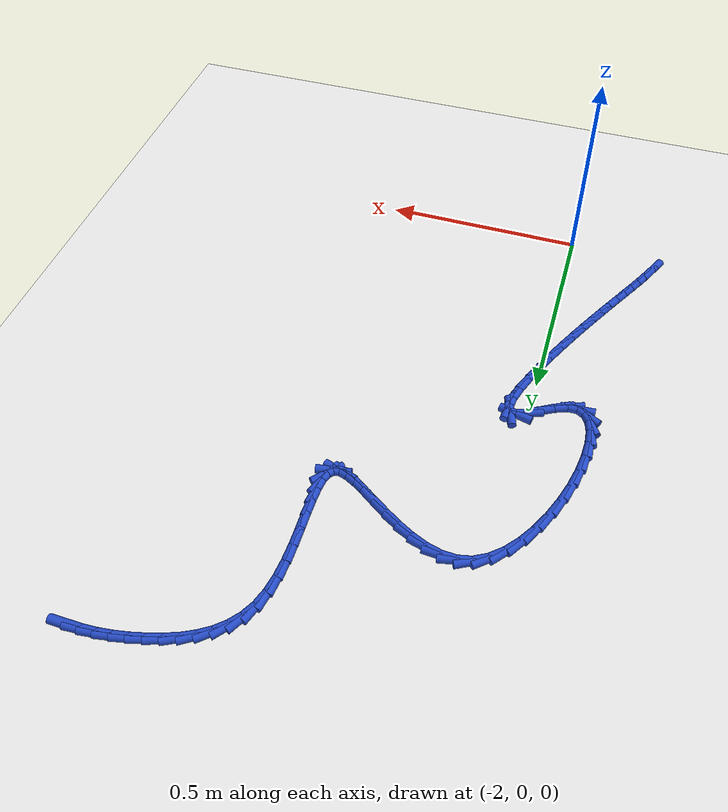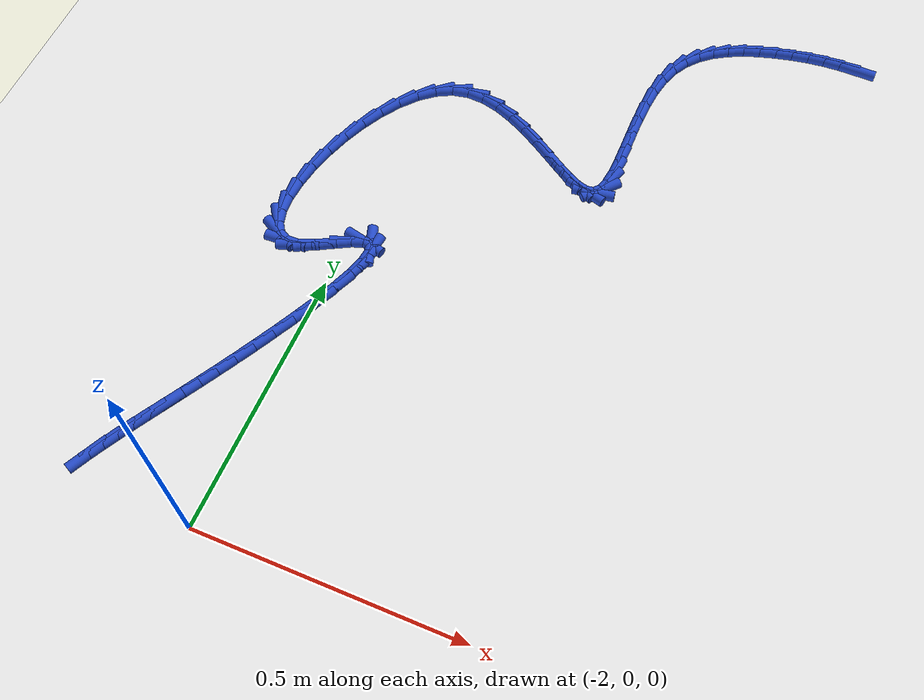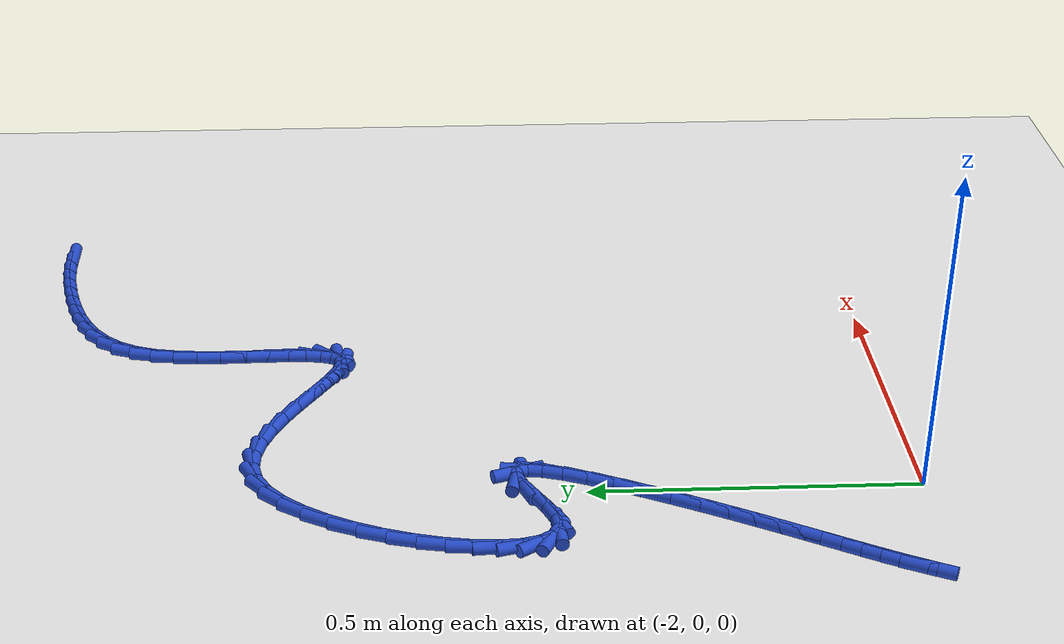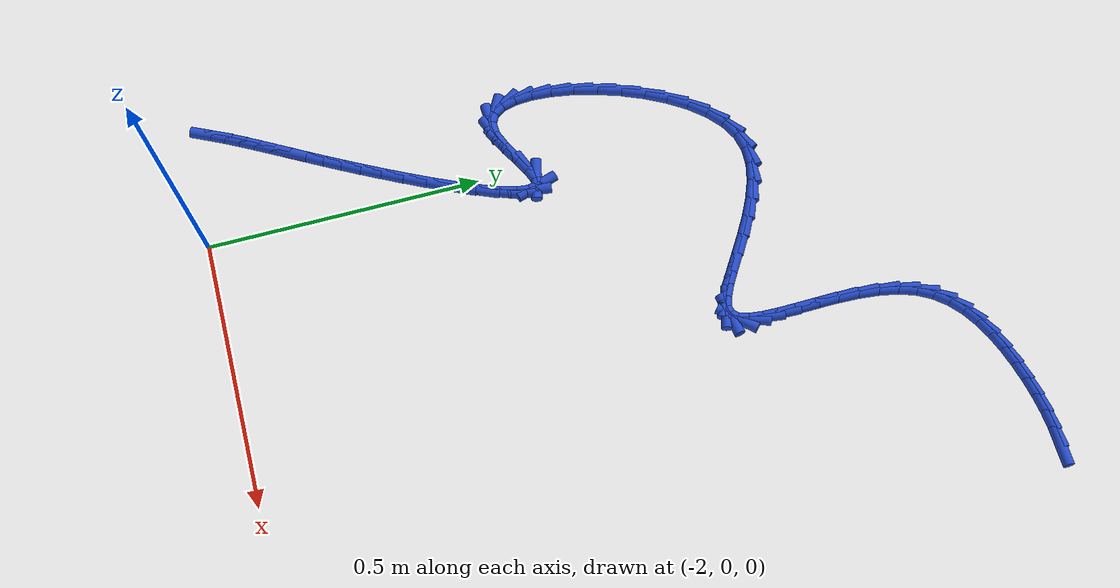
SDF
<sdf version="1.6">
 <world name="default">
  <model name="ground_plane">
   <static>1</static>
   <link name="link">
    <collision name="collision">
     <geometry><plane><normal>0 0 1</normal><size>100 100</size></plane></geometry>
     <surface><friction><ode><mu>100</mu><mu2>50</mu2></ode></friction></surface>
    </collision>
    <visual name="visual">
     <cast_shadows>0</cast_shadows>
     <geometry><plane><normal>0 0 1</normal><size>100 100</size></plane></geometry>
     <material>
      <script><uri>file://media/materials/scripts/gazebo.material</uri><name>Gazebo/WhiteGlow</name></script>
     </material>
    </visual>
   </link>
  </model>
  <model name="line">
   <link name="link_73">
    <pose>-1.2463343136387295 1.3368249456700645 0.01 0 1.57 -0.008631937998209965</pose>
    <collision name="collision">
     <geometry><cylinder><radius>0.01</radius><length>0.08</length></cylinder></geometry>
    </collision>
    <visual name="visual">
     <material>
      <script><name>Gazebo/Blue</name><uri>file://media/materials/scripts/gazebo.material</uri></script>
     </material>
     <geometry><cylinder><radius>0.01</radius><length>0.08</length></cylinder></geometry>
    </visual>
   </link>
   <link name="link_74">
    <pose>-1.2778266764549087 1.3370967925451467 0.01 0 1.57 0.06126466038014957</pose>
    <collision name="collision">
     <geometry><cylinder><radius>0.01</radius><length>0.08</length></cylinder></geometry>
    </collision>
    <visual name="visual">
     <material>
      <script><name>Gazebo/Blue</name><uri>file://media/materials/scripts/gazebo.material</uri></script>
     </material>
     <geometry><cylinder><radius>0.01</radius><length>0.08</length></cylinder></geometry>
    </visual>
   </link>
   <link name="link_75">
    <pose>-1.3095697956747943 1.3351496243767977 0.01 0 1.57 0.1242533988165497</pose>
    <collision name="collision">
     <geometry><cylinder><radius>0.01</radius><length>0.08</length></cylinder></geometry>
    </collision>
    <visual name="visual">
     <material>
      <script><name>Gazebo/Blue</name><uri>file://media/materials/scripts/gazebo.material</uri></script>
     </material>
     <geometry><cylinder><radius>0.01</radius><length>0.08</length></cylinder></geometry>
    </visual>
   </link>
   <link name="link_76">
    <pose>-1.3414238294434135 1.331171156913966 0.01 0 1.57 0.18093817223850028</pose>
    <collision name="collision">
     <geometry><cylinder><radius>0.01</radius><length>0.08</length></cylinder></geometry>
    </collision>
    <visual name="visual">
     <material>
      <script><name>Gazebo/Blue</name><uri>file://media/materials/scripts/gazebo.material</uri></script>
     </material>
     <geometry><cylinder><radius>0.01</radius><length>0.08</length></cylinder></geometry>
    </visual>
   </link>
   <link name="link_77">
    <pose>-1.3732489359057962 1.325349105905599 0.01 0 1.57 0.23198855997530543</pose>
    <collision name="collision">
     <geometry><cylinder><radius>0.01</radius><length>0.08</length></cylinder></geometry>
    </collision>
    <visual name="visual">
     <material>
      <script><name>Gazebo/Blue</name><uri>file://media/materials/scripts/gazebo.material</uri></script>
     </material>
     <geometry><cylinder><radius>0.01</radius><length>0.08</length></cylinder></geometry>
    </visual>
   </link>
   <link name="link_78">
    <pose>-1.404904838167228 1.3178706547364727 0.01 0 1.57 0.28393553386529696</pose>
    <collision name="collision">
     <geometry><cylinder><radius>0.01</radius><length>0.08</length></cylinder></geometry>
    </collision>
    <visual name="visual">
     <material>
      <script><name>Gazebo/Blue</name><uri>file://media/materials/scripts/gazebo.material</uri></script>
     </material>
     <geometry><cylinder><radius>0.01</radius><length>0.08</length></cylinder></geometry>
    </visual>
   </link>
   <link name="link_79">
    <pose>-1.436119392474305 1.3087616194852705 0.01 0 1.57 0.3524245528493814</pose>
    <collision name="collision">
     <geometry><cylinder><radius>0.01</radius><length>0.08</length></cylinder></geometry>
    </collision>
    <visual name="visual">
     <material>
      <script><name>Gazebo/Blue</name><uri>file://media/materials/scripts/gazebo.material</uri></script>
     </material>
     <geometry><cylinder><radius>0.01</radius><length>0.08</length></cylinder></geometry>
    </visual>
   </link>
   <link name="link_80">
    <pose>-1.4663038759538385 1.2976604139657608 0.01 0 1.57 0.4424551868783117</pose>
    <collision name="collision">
     <geometry><cylinder><radius>0.01</radius><length>0.08</length></cylinder></geometry>
    </collision>
    <visual name="visual">
     <material>
      <script><name>Gazebo/Blue</name><uri>file://media/materials/scripts/gazebo.material</uri></script>
     </material>
     <geometry><cylinder><radius>0.01</radius><length>0.08</length></cylinder></geometry>
    </visual>
   </link>
   <link name="link_81">
    <pose>-1.494823034834073 1.2841485114850038 0.01 0 1.57 0.5573507720597483</pose>
    <collision name="collision">
     <geometry><cylinder><radius>0.01</radius><length>0.08</length></cylinder></geometry>
    </collision>
    <visual name="visual">
     <material>
      <script><name>Gazebo/Blue</name><uri>file://media/materials/scripts/gazebo.material</uri></script>
     </material>
     <geometry><cylinder><radius>0.01</radius><length>0.08</length></cylinder></geometry>
    </visual>
   </link>
   <link name="link_82">
    <pose>-1.521041615343254 1.2678073853500609 0.01 0 1.57 0.6994492030944638</pose>
    <collision name="collision">
     <geometry><cylinder><radius>0.01</radius><length>0.08</length></cylinder></geometry>
    </collision>
    <visual name="visual">
     <material>
      <script><name>Gazebo/Blue</name><uri>file://media/materials/scripts/gazebo.material</uri></script>
     </material>
     <geometry><cylinder><radius>0.01</radius><length>0.08</length></cylinder></geometry>
    </visual>
   </link>
   <link name="link_83">
    <pose>-1.5443243637096262 1.2482185088679936 0.01 0 1.57 0.8676823654025316</pose>
    <collision name="collision">
     <geometry><cylinder><radius>0.01</radius><length>0.08</length></cylinder></geometry>
    </collision>
    <visual name="visual">
     <material>
      <script><name>Gazebo/Blue</name><uri>file://media/materials/scripts/gazebo.material</uri></script>
     </material>
     <geometry><cylinder><radius>0.01</radius><length>0.08</length></cylinder></geometry>
    </visual>
   </link>
   <link name="link_84">
    <pose>-1.5640360261614346 1.2249633553458619 0.01 0 1.57 1.0548963197041121</pose>
    <collision name="collision">
     <geometry><cylinder><radius>0.01</radius><length>0.08</length></cylinder></geometry>
    </collision>
    <visual name="visual">
     <material>
      <script><name>Gazebo/Blue</name><uri>file://media/materials/scripts/gazebo.material</uri></script>
     </material>
     <geometry><cylinder><radius>0.01</radius><length>0.08</length></cylinder></geometry>
    </visual>
   </link>
   <link name="link_85">
    <pose>-1.579541348926924 1.1976233980907283 0.01 0 1.57 1.239280055890908</pose>
    <collision name="collision">
     <geometry><cylinder><radius>0.01</radius><length>0.08</length></cylinder></geometry>
    </collision>
    <visual name="visual">
     <material>
      <script><name>Gazebo/Blue</name><uri>file://media/materials/scripts/gazebo.material</uri></script>
     </material>
     <geometry><cylinder><radius>0.01</radius><length>0.08</length></cylinder></geometry>
    </visual>
   </link>
   <link name="link_86">
    <pose>-1.5904218881682823 1.166014130874607 0.01 0 1.57 1.3776287967003065</pose>
    <collision name="collision">
     <geometry><cylinder><radius>0.01</radius><length>0.08</length></cylinder></geometry>
    </collision>
    <visual name="visual">
     <material>
      <script><name>Gazebo/Blue</name><uri>file://media/materials/scripts/gazebo.material</uri></script>
     </material>
     <geometry><cylinder><radius>0.01</radius><length>0.08</length></cylinder></geometry>
    </visual>
   </link>
   <link name="link_87">
    <pose>-1.5972639303978433 1.1310355340491673 0.01 0 1.57 1.4720005516141026</pose>
    <collision name="collision">
     <geometry><cylinder><radius>0.01</radius><length>0.08</length></cylinder></geometry>
    </collision>
    <visual name="visual">
     <material>
      <script><name>Gazebo/Blue</name><uri>file://media/materials/scripts/gazebo.material</uri></script>
     </material>
     <geometry><cylinder><radius>0.01</radius><length>0.08</length></cylinder></geometry>
    </visual>
   </link>
   <link name="link_88">
    <pose>-1.600944598009567 1.0939015106125443 0.01 0 1.57 1.5341370879950873</pose>
    <collision name="collision">
     <geometry><cylinder><radius>0.01</radius><length>0.08</length></cylinder></geometry>
    </collision>
    <visual name="visual">
     <material>
      <script><name>Gazebo/Blue</name><uri>file://media/materials/scripts/gazebo.material</uri></script>
     </material>
     <geometry><cylinder><radius>0.01</radius><length>0.08</length></cylinder></geometry>
    </visual>
   </link>
   <link name="link_89">
    <pose>-1.6023410430256986 1.0558259955430749 0.01 0 1.57 -1.5705152502460893</pose>
    <collision name="collision">
     <geometry><cylinder><radius>0.01</radius><length>0.08</length></cylinder></geometry>
    </collision>
    <visual name="visual">
     <material>
      <script><name>Gazebo/Blue</name><uri>file://media/materials/scripts/gazebo.material</uri></script>
     </material>
     <geometry><cylinder><radius>0.01</radius><length>0.08</length></cylinder></geometry>
    </visual>
   </link>
   <link name="link_90">
    <pose>-1.6023304174684843 1.0180229238190956 0.01 0 1.57 -1.5559132483573577</pose>
    <collision name="collision">
     <geometry><cylinder><radius>0.01</radius><length>0.08</length></cylinder></geometry>
    </collision>
    <visual name="visual">
     <material>
      <script><name>Gazebo/Blue</name><uri>file://media/materials/scripts/gazebo.material</uri></script>
     </material>
     <geometry><cylinder><radius>0.01</radius><length>0.08</length></cylinder></geometry>
    </visual>
   </link>
   <link name="link_91">
    <pose>-1.6017898733601696 0.9817062304189433 0.01 0 1.57 -1.5650459007870883</pose>
    <collision name="collision">
     <geometry><cylinder><radius>0.01</radius><length>0.08</length></cylinder></geometry>
    </collision>
    <visual name="visual">
     <material>
      <script><name>Gazebo/Blue</name><uri>file://media/materials/scripts/gazebo.material</uri></script>
     </material>
     <geometry><cylinder><radius>0.01</radius><length>0.08</length></cylinder></geometry>
    </visual>
   </link>
   <link name="link_92">
    <pose>-1.601596562723001 0.9480898503209554 0.01 0 1.57 1.536096427269565</pose>
    <collision name="collision">
     <geometry><cylinder><radius>0.01</radius><length>0.08</length></cylinder></geometry>
    </collision>
    <visual name="visual">
     <material>
      <script><name>Gazebo/Blue</name><uri>file://media/materials/scripts/gazebo.material</uri></script>
     </material>
     <geometry><cylinder><radius>0.01</radius><length>0.08</length></cylinder></geometry>
    </visual>
   </link>
   <link name="link_93">
    <pose>-1.6026276375792239 0.9183877185034672 0.01 0 1.57 1.4440032228487178</pose>
    <collision name="collision">
     <geometry><cylinder><radius>0.01</radius><length>0.08</length></cylinder></geometry>
    </collision>
    <visual name="visual">
     <material>
      <script><name>Gazebo/Blue</name><uri>file://media/materials/scripts/gazebo.material</uri></script>
     </material>
     <geometry><cylinder><radius>0.01</radius><length>0.08</length></cylinder></geometry>
    </visual>
   </link>
   <link name="link_94">
    <pose>-1.6057602499510846 0.8938137699448162 0.01 0 1.57 1.2473670896878621</pose>
    <collision name="collision">
     <geometry><cylinder><radius>0.01</radius><length>0.08</length></cylinder></geometry>
    </collision>
    <visual name="visual">
     <material>
      <script><name>Gazebo/Blue</name><uri>file://media/materials/scripts/gazebo.material</uri></script>
     </material>
     <geometry><cylinder><radius>0.01</radius><length>0.08</length></cylinder></geometry>
    </visual>
   </link>
   <link name="link_95">
    <pose>-1.6118715518608284 0.875581939623339 0.01 0 1.57 0.8197128560976703</pose>
    <collision name="collision">
     <geometry><cylinder><radius>0.01</radius><length>0.08</length></cylinder></geometry>
    </collision>
    <visual name="visual">
     <material>
      <script><name>Gazebo/Blue</name><uri>file://media/materials/scripts/gazebo.material</uri></script>
     </material>
     <geometry><cylinder><radius>0.01</radius><length>0.08</length></cylinder></geometry>
    </visual>
   </link>
   <link name="link_96">
    <pose>-1.621838695330702 0.8649061625173724 0.01 0 1.57 0.15324745145696742</pose>
    <collision name="collision">
     <geometry><cylinder><radius>0.01</radius><length>0.08</length></cylinder></geometry>
    </collision>
    <visual name="visual">
     <material>
      <script><name>Gazebo/Blue</name><uri>file://media/materials/scripts/gazebo.material</uri></script>
     </material>
     <geometry><cylinder><radius>0.01</radius><length>0.08</length></cylinder></geometry>
    </visual>
   </link>
   <link name="link_97">
    <pose>-1.6363663790182617 0.8626622384305411 0.01 0 1.57 -0.2705943471915253</pose>
    <collision name="collision">
     <geometry><cylinder><radius>0.01</radius><length>0.08</length></cylinder></geometry>
    </collision>
    <visual name="visual">
     <material>
      <script><name>Gazebo/Blue</name><uri>file://media/materials/scripts/gazebo.material</uri></script>
     </material>
     <geometry><cylinder><radius>0.01</radius><length>0.08</length></cylinder></geometry>
    </visual>
   </link>
   <link name="link_98">
    <pose>-1.6552247231686938 0.8678935075022591 0.01 0 1.57 -0.4569103766928133</pose>
    <collision name="collision">
     <geometry><cylinder><radius>0.01</radius><length>0.08</length></cylinder></geometry>
    </collision>
    <visual name="visual">
     <material>
      <script><name>Gazebo/Blue</name><uri>file://media/materials/scripts/gazebo.material</uri></script>
     </material>
     <geometry><cylinder><radius>0.01</radius><length>0.08</length></cylinder></geometry>
    </visual>
   </link>
   <link name="link_99">
    <pose>-1.6778687324640893 0.8790254520749997 0.01 0 1.57 -0.5383422594177437</pose>
    <collision name="collision">
     <geometry><cylinder><radius>0.01</radius><length>0.08</length></cylinder></geometry>
    </collision>
    <visual name="visual">
     <material>
      <script><name>Gazebo/Blue</name><uri>file://media/materials/scripts/gazebo.material</uri></script>
     </material>
     <geometry><cylinder><radius>0.01</radius><length>0.08</length></cylinder></geometry>
    </visual>
   </link>
   <link name="link_100">
    <pose>-1.7037531699599882 0.8944830807258415 0.01 0 1.57 -0.5672591291941141</pose>
    <collision name="collision">
     <geometry><cylinder><radius>0.01</radius><length>0.08</length></cylinder></geometry>
    </collision>
    <visual name="visual">
     <material>
      <script><name>Gazebo/Blue</name><uri>file://media/materials/scripts/gazebo.material</uri></script>
     </material>
     <geometry><cylinder><radius>0.01</radius><length>0.08</length></cylinder></geometry>
    </visual>
   </link>
   <link name="link_101">
    <pose>-1.7323327987119284 0.9126914020318617 0.01 0 1.57 -0.5627546140451036</pose>
    <collision name="collision">
     <geometry><cylinder><radius>0.01</radius><length>0.08</length></cylinder></geometry>
    </collision>
    <visual name="visual">
     <material>
      <script><name>Gazebo/Blue</name><uri>file://media/materials/scripts/gazebo.material</uri></script>
     </material>
     <geometry><cylinder><radius>0.01</radius><length>0.08</length></cylinder></geometry>
    </visual>
   </link>
   <link name="link_102">
    <pose>-1.7630623817754492 0.9320754245701387 0.01 0 1.57 -0.5309092877195615</pose>
    <collision name="collision">
     <geometry><cylinder><radius>0.01</radius><length>0.08</length></cylinder></geometry>
    </collision>
    <visual name="visual">
     <material>
      <script><name>Gazebo/Blue</name><uri>file://media/materials/scripts/gazebo.material</uri></script>
     </material>
     <geometry><cylinder><radius>0.01</radius><length>0.08</length></cylinder></geometry>
    </visual>
   </link>
   <link name="link_103">
    <pose>-1.7953966822060894 0.9510601569177506 0.01 0 1.57 -0.4711311863479076</pose>
    <collision name="collision">
     <geometry><cylinder><radius>0.01</radius><length>0.08</length></cylinder></geometry>
    </collision>
    <visual name="visual">
     <material>
      <script><name>Gazebo/Blue</name><uri>file://media/materials/scripts/gazebo.material</uri></script>
     </material>
     <geometry><cylinder><radius>0.01</radius><length>0.08</length></cylinder></geometry>
    </visual>
   </link>
   <link name="link_104">
    <pose>-1.8287904630593879 0.9680706076517746 0.01 0 1.57 -0.37790965209695593</pose>
    <collision name="collision">
     <geometry><cylinder><radius>0.01</radius><length>0.08</length></cylinder></geometry>
    </collision>
    <visual name="visual">
     <material>
      <script><name>Gazebo/Blue</name><uri>file://media/materials/scripts/gazebo.material</uri></script>
     </material>
     <geometry><cylinder><radius>0.01</radius><length>0.08</length></cylinder></geometry>
    </visual>
   </link>
   <link name="link_105">
    <pose>-1.8626984873908827 0.9815317853492888 0.01 0 1.57 -0.2412984838510857</pose>
    <collision name="collision">
     <geometry><cylinder><radius>0.01</radius><length>0.08</length></cylinder></geometry>
    </collision>
    <visual name="visual">
     <material>
      <script><name>Gazebo/Blue</name><uri>file://media/materials/scripts/gazebo.material</uri></script>
     </material>
     <geometry><cylinder><radius>0.01</radius><length>0.08</length></cylinder></geometry>
    </visual>
   </link>
   <link name="link_106">
    <pose>-1.896575518256114 0.9898686985873714 0.01 0 1.57 -0.04913813029897004</pose>
    <collision name="collision">
     <geometry><cylinder><radius>0.01</radius><length>0.08</length></cylinder></geometry>
    </collision>
    <visual name="visual">
     <material>
      <script><name>Gazebo/Blue</name><uri>file://media/materials/scripts/gazebo.material</uri></script>
     </material>
     <geometry><cylinder><radius>0.01</radius><length>0.08</length></cylinder></geometry>
    </visual>
   </link>
   <link name="link_107">
    <pose>-1.9298763187106198 0.9915063559431 0.01 0 1.57 0.2033554925159476</pose>
    <collision name="collision">
     <geometry><cylinder><radius>0.01</radius><length>0.08</length></cylinder></geometry>
    </collision>
    <visual name="visual">
     <material>
      <script><name>Gazebo/Blue</name><uri>file://media/materials/scripts/gazebo.material</uri></script>
     </material>
     <geometry><cylinder><radius>0.01</radius><length>0.08</length></cylinder></geometry>
    </visual>
   </link>
   <link name="link_108">
    <pose>-1.9620557343318434 0.984870773779445 0.01 0 1.57 0.47632104002496634</pose>
    <collision name="collision">
     <geometry><cylinder><radius>0.01</radius><length>0.08</length></cylinder></geometry>
    </collision>
    <visual name="visual">
     <material>
      <script><name>Gazebo/Blue</name><uri>file://media/materials/scripts/gazebo.material</uri></script>
     </material>
     <geometry><cylinder><radius>0.01</radius><length>0.08</length></cylinder></geometry>
    </visual>
   </link>
   <link name="link_109">
    <pose>-1.9926267394762485 0.9690978571006593 0.01 0 1.57 0.6938680716081848</pose>
    <collision name="collision">
     <geometry><cylinder><radius>0.01</radius><length>0.08</length></cylinder></geometry>
    </collision>
    <visual name="visual">
     <material>
      <script><name>Gazebo/Blue</name><uri>file://media/materials/scripts/gazebo.material</uri></script>
     </material>
     <geometry><cylinder><radius>0.01</radius><length>0.08</length></cylinder></geometry>
    </visual>
   </link>
   <link name="link_110">
    <pose>-2.0212622770623305 0.9452771020077632 0.01 0 1.57 0.8564467758626754</pose>
    <collision name="collision">
     <geometry><cylinder><radius>0.01</radius><length>0.08</length></cylinder></geometry>
    </collision>
    <visual name="visual">
     <material>
      <script><name>Gazebo/Blue</name><uri>file://media/materials/scripts/gazebo.material</uri></script>
     </material>
     <geometry><cylinder><radius>0.01</radius><length>0.08</length></cylinder></geometry>
    </visual>
   </link>
   <link name="link_111">
    <pose>-2.0476625696667794 0.9148311531697765 0.01 0 1.57 0.9808618506057496</pose>
    <collision name="collision">
     <geometry><cylinder><radius>0.01</radius><length>0.08</length></cylinder></geometry>
    </collision>
    <visual name="visual">
     <material>
      <script><name>Gazebo/Blue</name><uri>file://media/materials/scripts/gazebo.material</uri></script>
     </material>
     <geometry><cylinder><radius>0.01</radius><length>0.08</length></cylinder></geometry>
    </visual>
   </link>
   <link name="link_112">
    <pose>-2.071527839866285 0.87918265525572 0.01 0 1.57 1.080799724266123</pose>
    <collision name="collision">
     <geometry><cylinder><radius>0.01</radius><length>0.08</length></cylinder></geometry>
    </collision>
    <visual name="visual">
     <material>
      <script><name>Gazebo/Blue</name><uri>file://media/materials/scripts/gazebo.material</uri></script>
     </material>
     <geometry><cylinder><radius>0.01</radius><length>0.08</length></cylinder></geometry>
    </visual>
   </link>
   <link name="link_113">
    <pose>-2.0925583102375374 0.8397542529346141 0.01 0 1.57 1.1661521935416392</pose>
    <collision name="collision">
     <geometry><cylinder><radius>0.01</radius><length>0.08</length></cylinder></geometry>
    </collision>
    <visual name="visual">
     <material>
      <script><name>Gazebo/Blue</name><uri>file://media/materials/scripts/gazebo.material</uri></script>
     </material>
     <geometry><cylinder><radius>0.01</radius><length>0.08</length></cylinder></geometry>
    </visual>
   </link>
   <link name="link_114">
    <pose>-2.1104542033572256 0.7979685908754789 0.01 0 1.57 1.2443877835960404</pose>
    <collision name="collision">
     <geometry><cylinder><radius>0.01</radius><length>0.08</length></cylinder></geometry>
    </collision>
    <visual name="visual">
     <material>
      <script><name>Gazebo/Blue</name><uri>file://media/materials/scripts/gazebo.material</uri></script>
     </material>
     <geometry><cylinder><radius>0.01</radius><length>0.08</length></cylinder></geometry>
    </visual>
   </link>
   <link name="link_115">
    <pose>-2.1249157418020403 0.7552483137473356 0.01 0 1.57 1.322047273846634</pose>
    <collision name="collision">
     <geometry><cylinder><radius>0.01</radius><length>0.08</length></cylinder></geometry>
    </collision>
    <visual name="visual">
     <material>
      <script><name>Gazebo/Blue</name><uri>file://media/materials/scripts/gazebo.material</uri></script>
     </material>
     <geometry><cylinder><radius>0.01</radius><length>0.08</length></cylinder></geometry>
    </visual>
   </link>
   <link name="link_116">
    <pose>-2.1356431481486715 0.7130160662192043 0.01 0 1.57 1.4062935764547546</pose>
    <collision name="collision">
     <geometry><cylinder><radius>0.01</radius><length>0.08</length></cylinder></geometry>
    </collision>
    <visual name="visual">
     <material>
      <script><name>Gazebo/Blue</name><uri>file://media/materials/scripts/gazebo.material</uri></script>
     </material>
     <geometry><cylinder><radius>0.01</radius><length>0.08</length></cylinder></geometry>
    </visual>
   </link>
   <link name="link_117">
    <pose>-2.142336644973808 0.672694492960106 0.01 0 1.57 1.507083777794201</pose>
    <collision name="collision">
     <geometry><cylinder><radius>0.01</radius><length>0.08</length></cylinder></geometry>
    </collision>
    <visual name="visual">
     <material>
      <script><name>Gazebo/Blue</name><uri>file://media/materials/scripts/gazebo.material</uri></script>
     </material>
     <geometry><cylinder><radius>0.01</radius><length>0.08</length></cylinder></geometry>
    </visual>
   </link>
   <link name="link_118">
    <pose>-2.1446964548541407 0.6357062386390596 0.01 0 1.57 -1.5003733273414732</pose>
    <collision name="collision">
     <geometry><cylinder><radius>0.01</radius><length>0.08</length></cylinder></geometry>
    </collision>
    <visual name="visual">
     <material>
      <script><name>Gazebo/Blue</name><uri>file://media/materials/scripts/gazebo.material</uri></script>
     </material>
     <geometry><cylinder><radius>0.01</radius><length>0.08</length></cylinder></geometry>
    </visual>
   </link>
   <link name="link_119">
    <pose>-2.142422800366358 0.6034739479250867 0.01 0 1.57 -1.3009272549280144</pose>
    <collision name="collision">
     <geometry><cylinder><radius>0.01</radius><length>0.08</length></cylinder></geometry>
    </collision>
    <visual name="visual">
     <material>
      <script><name>Gazebo/Blue</name><uri>file://media/materials/scripts/gazebo.material</uri></script>
     </material>
     <geometry><cylinder><radius>0.01</radius><length>0.08</length></cylinder></geometry>
    </visual>
   </link>
   <link name="link_120">
    <pose>-2.135215904087151 0.5774202654872073 0.01 0 1.57 -0.9776230017468416</pose>
    <collision name="collision">
     <geometry><cylinder><radius>0.01</radius><length>0.08</length></cylinder></geometry>
    </collision>
    <visual name="visual">
     <material>
      <script><name>Gazebo/Blue</name><uri>file://media/materials/scripts/gazebo.material</uri></script>
     </material>
     <geometry><cylinder><radius>0.01</radius><length>0.08</length></cylinder></geometry>
    </visual>
   </link>
   <link name="link_121">
    <pose>-2.1227759885932094 0.5589678359944422 0.01 0 1.57 -0.48313543298579753</pose>
    <collision name="collision">
     <geometry><cylinder><radius>0.01</radius><length>0.08</length></cylinder></geometry>
    </collision>
    <visual name="visual">
     <material>
      <script><name>Gazebo/Blue</name><uri>file://media/materials/scripts/gazebo.material</uri></script>
     </material>
     <geometry><cylinder><radius>0.01</radius><length>0.08</length></cylinder></geometry>
    </visual>
   </link>
   <link name="link_122">
    <pose>-2.1048032764612223 0.5495393041158116 0.01 0 1.57 0.04264386298469424</pose>
    <collision name="collision">
     <geometry><cylinder><radius>0.01</radius><length>0.08</length></cylinder></geometry>
    </collision>
    <visual name="visual">
     <material>
      <script><name>Gazebo/Blue</name><uri>file://media/materials/scripts/gazebo.material</uri></script>
     </material>
     <geometry><cylinder><radius>0.01</radius><length>0.08</length></cylinder></geometry>
    </visual>
   </link>
   <link name="link_123">
    <pose>-2.080999301784064 0.5505550133138277 0.01 0 1.57 0.36774501249843305</pose>
    <collision name="collision">
     <geometry><cylinder><radius>0.01</radius><length>0.08</length></cylinder></geometry>
    </collision>
    <visual name="visual">
     <material>
      <script><name>Gazebo/Blue</name><uri>file://media/materials/scripts/gazebo.material</uri></script>
     </material>
     <geometry><cylinder><radius>0.01</radius><length>0.08</length></cylinder></geometry>
    </visual>
   </link>
   <link name="link_124">
    <pose>-2.0520497923753016 0.5617084255815697 0.01 0 1.57 0.48563595849198266</pose>
    <collision name="collision">
     <geometry><cylinder><radius>0.01</radius><length>0.08</length></cylinder></geometry>
    </collision>
    <visual name="visual">
     <material>
      <script><name>Gazebo/Blue</name><uri>file://media/materials/scripts/gazebo.material</uri></script>
     </material>
     <geometry><cylinder><radius>0.01</radius><length>0.08</length></cylinder></geometry>
    </visual>
   </link>
   <link name="link_125">
    <pose>-2.021372164966424 0.5778999394395068 0.01 0 1.57 0.4925598282507863</pose>
    <collision name="collision">
     <geometry><cylinder><radius>0.01</radius><length>0.08</length></cylinder></geometry>
    </collision>
    <visual name="visual">
     <material>
      <script><name>Gazebo/Blue</name><uri>file://media/materials/scripts/gazebo.material</uri></script>
     </material>
     <geometry><cylinder><radius>0.01</radius><length>0.08</length></cylinder></geometry>
    </visual>
   </link>
   <link name="link_126">
    <pose>-1.9928539237493808 0.5932051307056188 0.01 0 1.57 0.36140887372729025</pose>
    <collision name="collision">
     <geometry><cylinder><radius>0.01</radius><length>0.08</length></cylinder></geometry>
    </collision>
    <visual name="visual">
     <material>
      <script><name>Gazebo/Blue</name><uri>file://media/materials/scripts/gazebo.material</uri></script>
     </material>
     <geometry><cylinder><radius>0.01</radius><length>0.08</length></cylinder></geometry>
    </visual>
   </link>
   <link name="link_127">
    <pose>-1.970382572916117 0.6016995751978852 0.01 0 1.57 -0.22307076742076928</pose>
    <collision name="collision">
     <geometry><cylinder><radius>0.01</radius><length>0.08</length></cylinder></geometry>
    </collision>
    <visual name="visual">
     <material>
      <script><name>Gazebo/Blue</name><uri>file://media/materials/scripts/gazebo.material</uri></script>
     </material>
     <geometry><cylinder><radius>0.01</radius><length>0.08</length></cylinder></geometry>
    </visual>
   </link>
   <link name="link_128">
    <pose>-1.957038569011086 0.5986725416829497 0.01 0 1.57 -1.2552259364582883</pose>
    <collision name="collision">
     <geometry><cylinder><radius>0.01</radius><length>0.08</length></cylinder></geometry>
    </collision>
    <visual name="visual">
     <material>
      <script><name>Gazebo/Blue</name><uri>file://media/materials/scripts/gazebo.material</uri></script>
     </material>
     <geometry><cylinder><radius>0.01</radius><length>0.08</length></cylinder></geometry>
    </visual>
   </link>
   <link name="link_129">
    <pose>-1.9524472217146582 0.5846093829486839 0.01 0 1.57 1.4481714277368718</pose>
    <collision name="collision">
     <geometry><cylinder><radius>0.01</radius><length>0.08</length></cylinder></geometry>
    </collision>
    <visual name="visual">
     <material>
      <script><name>Gazebo/Blue</name><uri>file://media/materials/scripts/gazebo.material</uri></script>
     </material>
     <geometry><cylinder><radius>0.01</radius><length>0.08</length></cylinder></geometry>
    </visual>
   </link>
   <link name="link_130">
    <pose>-1.9553093819677902 0.5613857154890055 0.01 0 1.57 1.2834358762890343</pose>
    <collision name="collision">
     <geometry><cylinder><radius>0.01</radius><length>0.08</length></cylinder></geometry>
    </collision>
    <visual name="visual">
     <material>
      <script><name>Gazebo/Blue</name><uri>file://media/materials/scripts/gazebo.material</uri></script>
     </material>
     <geometry><cylinder><radius>0.01</radius><length>0.08</length></cylinder></geometry>
    </visual>
   </link>
   <link name="link_131">
    <pose>-1.9643258906786227 0.5308771708858535 0.01 0 1.57 1.2022368172661273</pose>
    <collision name="collision">
     <geometry><cylinder><radius>0.01</radius><length>0.08</length></cylinder></geometry>
    </collision>
    <visual name="visual">
     <material>
      <script><name>Gazebo/Blue</name><uri>file://media/materials/scripts/gazebo.material</uri></script>
     </material>
     <geometry><cylinder><radius>0.01</radius><length>0.08</length></cylinder></geometry>
    </visual>
   </link>
   <link name="link_132">
    <pose>-1.9781975887552996 0.4949593807211677 0.01 0 1.57 1.1548227489518483</pose>
    <collision name="collision">
     <geometry><cylinder><radius>0.01</radius><length>0.08</length></cylinder></geometry>
    </collision>
    <visual name="visual">
     <material>
      <script><name>Gazebo/Blue</name><uri>file://media/materials/scripts/gazebo.material</uri></script>
     </material>
     <geometry><cylinder><radius>0.01</radius><length>0.08</length></cylinder></geometry>
    </visual>
   </link>
   <link name="link_133">
    <pose>-1.9956253171059621 0.4555079765768878 0.01 0 1.57 1.124223896999186</pose>
    <collision name="collision">
     <geometry><cylinder><radius>0.01</radius><length>0.08</length></cylinder></geometry>
    </collision>
    <visual name="visual">
     <material>
      <script><name>Gazebo/Blue</name><uri>file://media/materials/scripts/gazebo.material</uri></script>
     </material>
     <geometry><cylinder><radius>0.01</radius><length>0.08</length></cylinder></geometry>
    </visual>
   </link>
   <link name="link_134">
    <pose>-2.0153099166387536 0.414398590034952 0.01 0 1.57 1.1033129262845944</pose>
    <collision name="collision">
     <geometry><cylinder><radius>0.01</radius><length>0.08</length></cylinder></geometry>
    </collision>
    <visual name="visual">
     <material>
      <script><name>Gazebo/Blue</name><uri>file://media/materials/scripts/gazebo.material</uri></script>
     </material>
     <geometry><cylinder><radius>0.01</radius><length>0.08</length></cylinder></geometry>
    </visual>
   </link>
   <link name="link_135">
    <pose>-2.0359522282618165 0.3735068526773003 0.01 0 1.57 1.0885006600449785</pose>
    <collision name="collision">
     <geometry><cylinder><radius>0.01</radius><length>0.08</length></cylinder></geometry>
    </collision>
    <visual name="visual">
     <material>
      <script><name>Gazebo/Blue</name><uri>file://media/materials/scripts/gazebo.material</uri></script>
     </material>
     <geometry><cylinder><radius>0.01</radius><length>0.08</length></cylinder></geometry>
    </visual>
   </link>
   <link name="link_136">
    <pose>-2.0563307134992614 0.33458186458583405 0.01 0 1.57 1.076261615919782</pose>
    <collision name="collision">
     <geometry><cylinder><radius>0.01</radius><length>0.08</length></cylinder></geometry>
    </collision>
    <visual name="visual">
     <material>
      <script><name>Gazebo/Blue</name><uri>file://media/materials/scripts/gazebo.material</uri></script>
     </material>
     <geometry><cylinder><radius>0.01</radius><length>0.08</length></cylinder></geometry>
    </visual>
   </link>
   <link name="link_137">
    <pose>-2.075989208972142 0.2981250668552217 0.01 0 1.57 1.0654989032563897</pose>
    <collision name="collision">
     <geometry><cylinder><radius>0.01</radius><length>0.08</length></cylinder></geometry>
    </collision>
    <visual name="visual">
     <material>
      <script><name>Gazebo/Blue</name><uri>file://media/materials/scripts/gazebo.material</uri></script>
     </material>
     <geometry><cylinder><radius>0.01</radius><length>0.08</length></cylinder></geometry>
    </visual>
   </link>
   <link name="link_138">
    <pose>-2.0949072366091754 0.2639276779822399 0.01 0 1.57 1.0566380360842194</pose>
    <collision name="collision">
     <geometry><cylinder><radius>0.01</radius><length>0.08</length></cylinder></geometry>
    </collision>
    <visual name="visual">
     <material>
      <script><name>Gazebo/Blue</name><uri>file://media/materials/scripts/gazebo.material</uri></script>
     </material>
     <geometry><cylinder><radius>0.01</radius><length>0.08</length></cylinder></geometry>
    </visual>
   </link>
   <link name="link_139">
    <pose>-2.113069365019901 0.23177268973051068 0.01 0 1.57 1.0501700967167167</pose>
    <collision name="collision">
     <geometry><cylinder><radius>0.01</radius><length>0.08</length></cylinder></geometry>
    </collision>
    <visual name="visual">
     <material>
      <script><name>Gazebo/Blue</name><uri>file://media/materials/scripts/gazebo.material</uri></script>
     </material>
     <geometry><cylinder><radius>0.01</radius><length>0.08</length></cylinder></geometry>
    </visual>
   </link>
   <link name="link_140">
    <pose>-2.130460162813859 0.20144309386365677 0.01 0 1.57 1.046627520908579</pose>
    <collision name="collision">
     <geometry><cylinder><radius>0.01</radius><length>0.08</length></cylinder></geometry>
    </collision>
    <visual name="visual">
     <material>
      <script><name>Gazebo/Blue</name><uri>file://media/materials/scripts/gazebo.material</uri></script>
     </material>
     <geometry><cylinder><radius>0.01</radius><length>0.08</length></cylinder></geometry>
    </visual>
   </link>
   <link name="link_141">
    <pose>-2.1470641986005923 0.17272188214529938 0.01 0 1.57 1.0465678552836806</pose>
    <collision name="collision">
     <geometry><cylinder><radius>0.01</radius><length>0.08</length></cylinder></geometry>
    </collision>
    <visual name="visual">
     <material>
      <script><name>Gazebo/Blue</name><uri>file://media/materials/scripts/gazebo.material</uri></script>
     </material>
     <geometry><cylinder><radius>0.01</radius><length>0.08</length></cylinder></geometry>
    </visual>
   </link>
   <link name="link_142">
    <pose>-2.1628660409896403 0.14539204633906108 0.01 0 1.57 1.0505488838214128</pose>
    <collision name="collision">
     <geometry><cylinder><radius>0.01</radius><length>0.08</length></cylinder></geometry>
    </collision>
    <visual name="visual">
     <material>
      <script><name>Gazebo/Blue</name><uri>file://media/materials/scripts/gazebo.material</uri></script>
     </material>
     <geometry><cylinder><radius>0.01</radius><length>0.08</length></cylinder></geometry>
    </visual>
   </link>
   <link name="link_143">
    <pose>-2.1778502585905426 0.11923657820856397 0.01 0 1.57 1.059093717886247</pose>
    <collision name="collision">
     <geometry><cylinder><radius>0.01</radius><length>0.08</length></cylinder></geometry>
    </collision>
    <visual name="visual">
     <material>
      <script><name>Gazebo/Blue</name><uri>file://media/materials/scripts/gazebo.material</uri></script>
     </material>
     <geometry><cylinder><radius>0.01</radius><length>0.08</length></cylinder></geometry>
    </visual>
   </link>
   <link name="link_144">
    <pose>-2.192001420012841 0.09403846951743032 0.01 0 1.57 1.0726453359440864</pose>
    <collision name="collision">
     <geometry><cylinder><radius>0.01</radius><length>0.08</length></cylinder></geometry>
    </collision>
    <visual name="visual">
     <material>
      <script><name>Gazebo/Blue</name><uri>file://media/materials/scripts/gazebo.material</uri></script>
     </material>
     <geometry><cylinder><radius>0.01</radius><length>0.08</length></cylinder></geometry>
    </visual>
   </link>
   <link name="link_145">
    <pose>-2.205304093866074 0.06958071202928216 0.01 0 1.57 1.09151190501387</pose>
    <collision name="collision">
     <geometry><cylinder><radius>0.01</radius><length>0.08</length></cylinder></geometry>
    </collision>
    <visual name="visual">
     <material>
      <script><name>Gazebo/Blue</name><uri>file://media/materials/scripts/gazebo.material</uri></script>
     </material>
     <geometry><cylinder><radius>0.01</radius><length>0.08</length></cylinder></geometry>
    </visual>
   </link>
   <link name="link_146">
    <pose>-2.2177428487597846 0.045646297507741754 0.01 0 1.57 1.1158072758573199</pose>
    <collision name="collision">
     <geometry><cylinder><radius>0.01</radius><length>0.08</length></cylinder></geometry>
    </collision>
    <visual name="visual">
     <material>
      <script><name>Gazebo/Blue</name><uri>file://media/materials/scripts/gazebo.material</uri></script>
     </material>
     <geometry><cylinder><radius>0.01</radius><length>0.08</length></cylinder></geometry>
    </visual>
   </link>
  </model>
 </world>
</sdf>
